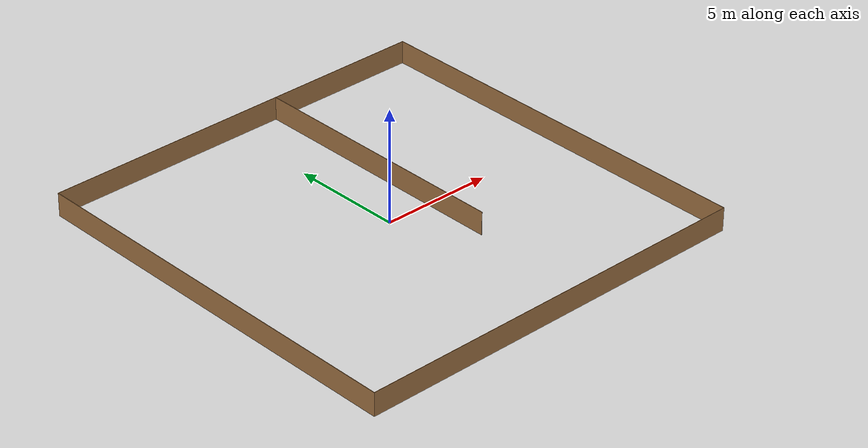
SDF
<?xml version="1.0" ?>
<sdf version="1.5">
  <model name="cabinet">
    <static>true</static>
    <link name="cabinet_bottom_plate">
      <inertial>
        <pose>0 0 -1 0 0 0</pose>
        <inertia>
          <ixx>2.050000</ixx>
          <ixy>0</ixy>
          <ixz>0</ixz>
          <iyy>2.050000</iyy>
          <iyz>0</iyz>
          <izz>2.050000</izz>
        </inertia>
        <mass>25.000000</mass>
      </inertial>

      <collision name="cabinet_bottom_plate_geom_cabinet_back_plate">
        <pose>9 0 0.510000 0 0 0</pose>
        <geometry>
          <box>
            <size>0.020000 18 1.020000</size>
          </box>
        </geometry>
      </collision>
      <visual name="cabinet_bottom_plate_geom_cabinet_back_plate_visual">
        <pose>9 0 0.510000 0 0 0</pose>
        <geometry>
          <box>
            <size>0.020000 18 1.020000</size>
          </box>
        </geometry>
        <material>
          <script>
            <uri>file://media/materials/scripts/gazebo.material</uri>
            <name>Gazebo/Wood</name>
          </script>
        </material>
      </visual>

      <collision name="cabinet_bottom_plate_geom_cabinet_back_plate3">
        <pose>2 3 0.510000 0 0 0</pose>
        <geometry>
          <box>
            <size>0.020000 12 1.020000</size>
          </box>
        </geometry>
      </collision>
      <visual name="cabinet_bottom_plate_geom_cabinet_back_plate_visual3">
        <pose>2 3 0.510000 0 0 0</pose>
        <geometry>
          <box>
            <size>0.020000 12 1.020000</size>
          </box>
        </geometry>
        <material>
          <script>
            <uri>file://media/materials/scripts/gazebo.material</uri>
            <name>Gazebo/Wood</name>
          </script>
        </material>
      </visual>

      <collision name="cabinet_bottom_plate_geom_cabinet_back_plate2">
        <pose>-9 0 0.510000 0 0 0</pose>
        <geometry>
          <box>
            <size>0.020000 18 1.020000</size>
          </box>
        </geometry>
      </collision>
      <visual name="cabinet_bottom_plate_geom_cabinet_back_plate_visual2">
        <pose>-9 0 0.510000 0 0 0</pose>
        <geometry>
          <box>
            <size>0.020000 18 1.020000</size>
          </box>
        </geometry>
        <material>
          <script>
            <uri>file://media/materials/scripts/gazebo.material</uri>
            <name>Gazebo/Wood</name>
          </script>
        </material>
      </visual>

      <collision name="cabinet_bottom_plate_geom_cabinet_left_plate">
        <pose>0 9 0.510000 0 0 0</pose>
        <geometry>
          <box>
            <size>18 0.020000 1.020000</size>
          </box>
        </geometry>
      </collision>
      <visual name="cabinet_bottom_plate_geom_cabinet_left_plate_visual">
        <pose>0 9 0.510000 0 0 0</pose>
        <geometry>
          <box>
            <size>18 0.020000 1.020000</size>
          </box>
        </geometry>
        <material>
          <script>
            <uri>file://media/materials/scripts/gazebo.material</uri>
            <name>Gazebo/Wood</name>
          </script>
        </material>
      </visual>

      <collision name="cabinet_bottom_plate_geom_cabinet_right_plate">
        <pose>0 -9 0.510000 0 0 0</pose>
        <geometry>
          <box>
            <size>18 0.020000 1.020000</size>
          </box>
        </geometry>
      </collision>
      <visual name="cabinet_bottom_plate_geom_cabinet_right_plate_visual">
        <pose>0 -9 0.510000 0 0 0</pose>
        <geometry>
          <box>
            <size>18 0.020000 1.020000</size>
          </box>
        </geometry>
        <material>
          <script>
            <uri>file://media/materials/scripts/gazebo.material</uri>
            <name>Gazebo/Wood</name>
          </script>
        </material>
      </visual>

    </link>
  </model>
</sdf>
